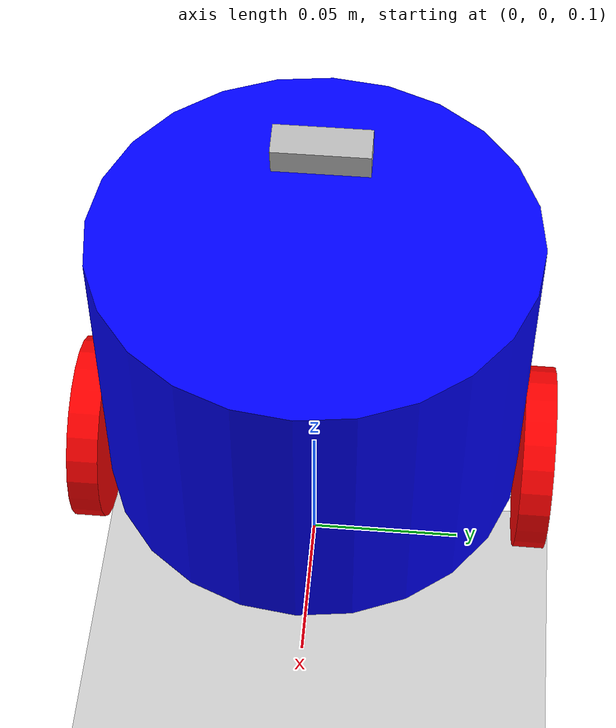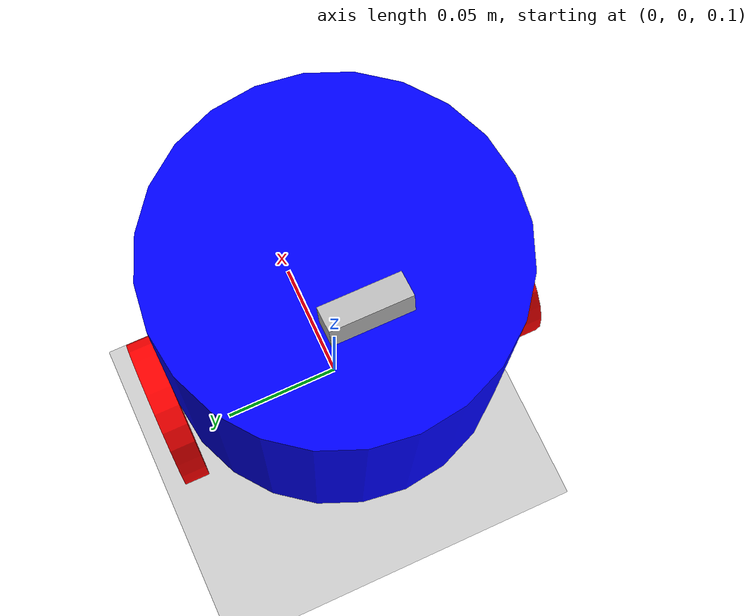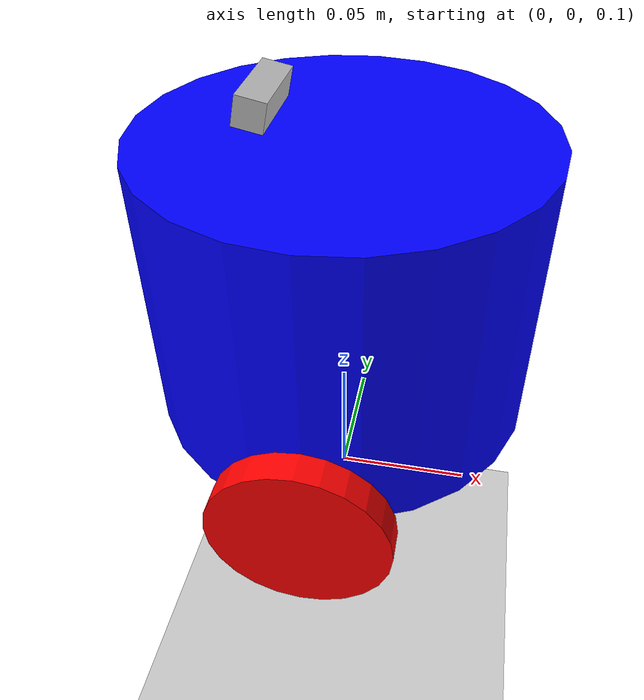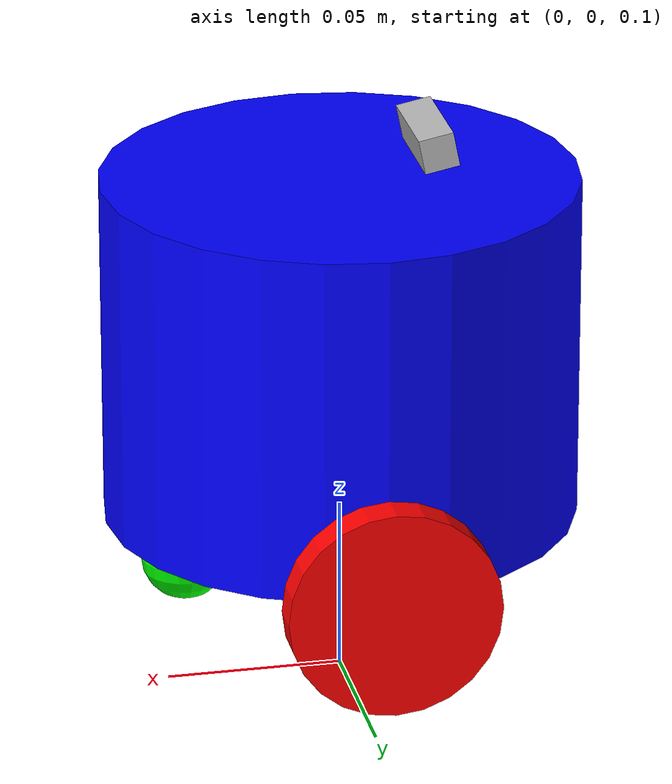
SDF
<sdf version="1.10">
 <world name="Mtracker_demo">
  <physics name="1ms" type="ignored">
   <max_step_size>0.001</max_step_size>
   <real_time_factor>1</real_time_factor>
   <real_time_update_rate>1000</real_time_update_rate>
  </physics>
  <plugin name="ignition::gazebo::systems::Sensors" filename="ignition-gazebo-sensors-system"/>
  <plugin name="gz::sim::systems::Physics" filename="gz-sim-physics-system"/>
  <plugin name="gz::sim::systems::UserCommands" filename="gz-sim-user-commands-system"/>
  <plugin name="gz::sim::systems::SceneBroadcaster" filename="gz-sim-scene-broadcaster-system"/>
  <gravity>0 0 -9.8000000000000007</gravity>
  <magnetic_field>5.5644999999999998e-06 2.2875799999999999e-05 -4.2388400000000002e-05</magnetic_field>
  <atmosphere type="adiabatic"/>
  <scene>
   <ambient>0.400000006 0.400000006 0.400000006 1</ambient>
   <background>0.699999988 0.699999988 0.699999988 1</background>
   <shadows>true</shadows>
  </scene>
  <model name="ground_plane">
   <static>true</static>
   <link name="link">
    <collision name="collision">
     <geometry><plane><normal>0 0 1</normal><size>1 1</size></plane></geometry>
    </collision>
    <visual name="visual">
     <geometry><plane><normal>0 0 1</normal><size>100 100</size></plane></geometry>
     <material>
      <ambient>0.800000012 0.800000012 0.800000012 1</ambient>
      <diffuse>0.800000012 0.800000012 0.800000012 1</diffuse>
      <specular>0.800000012 0.800000012 0.800000012 1</specular>
     </material>
    </visual>
    <inertial>
     <mass>1</mass>
     <inertia><ixx>1</ixx><ixy>0</ixy><ixz>0</ixz><iyy>1</iyy><iyz>0</iyz><izz>1</izz></inertia>
    </inertial>
   </link>
  </model>
  <model name="MTracker" canonical_link="chassis">
   <pose>0 0 0 0 0 3.14</pose>
   <link name="chassis">
    <pose>0 0 0.2 0 0 0</pose>
    <inertial>
     <mass>1.14395</mass>
     <inertia>
      <ixx>0.002256</ixx>
      <ixy>0</ixy>
      <ixz>0</ixz>
      <iyy>0.002256</iyy>
      <iyz>0</iyz>
      <izz>0.002606</izz>
     </inertia>
    </inertial>
    <visual name="visual">
     <geometry><cylinder><radius>0.0675</radius><length>0.1</length></cylinder></geometry>
     <material><ambient>0 0 1 1</ambient><diffuse>0 0 1 1</diffuse><specular>0 0 1 1</specular></material>
    </visual>
    <collision name="collision">
     <geometry><cylinder><radius>0.0675</radius><length>0.1</length></cylinder></geometry>
    </collision>
   </link>
   <link name="camera">
    <pose relative_to="chassis">0.025 0 0.06 0 -0.2 0</pose>
    <inertial>
     <mass>0.1</mass>
     <inertia><ixx>0.000166667</ixx><iyy>0.000166667</iyy><izz>0.000166667</izz></inertia>
    </inertial>
    <collision name="collision"><geometry><box><size>0.01 0.03 0.01</size></box></geometry></collision>
    <visual name="visual"><geometry><box><size>0.01 0.03 0.01</size></box></geometry></visual>
    <sensor name="rgbd_camera" type="rgbd_camera">
     <camera>
      <horizontal_fov>1.20428</horizontal_fov>
      <image><width>1280</width><height>720</height></image>
      <clip><near>0.1</near><far>100</far></clip>
     </camera>
     <always_on>1</always_on>
     <update_rate>30</update_rate>
     <visualize>true</visualize>
     <topic>kamera</topic>
    </sensor>
   </link>
   <link name="left_wheel">
    <pose relative_to="chassis">0 0.0725 -0.05 -1.5707 0 0</pose>
    <inertial>
     <mass>0.1</mass>
     <inertia>
      <ixx>0.000016</ixx>
      <ixy>0</ixy>
      <ixz>0</ixz>
      <iyy>0.000016</iyy>
      <iyz>0</iyz>
      <izz>0.000016</izz>
     </inertia>
    </inertial>
    <visual name="visual">
     <geometry><cylinder><radius>0.03</radius><length>0.01</length></cylinder></geometry>
     <material><ambient>1 0 0 1</ambient><diffuse>1 0 0 1</diffuse><specular>1 0 0 1</specular></material>
    </visual>
    <collision name="collision">
     <geometry><cylinder><radius>0.03</radius><length>0.01</length></cylinder></geometry>
    </collision>
   </link>
   <link name="right_wheel">
    <pose relative_to="chassis">0 -0.0725 -0.05 -1.5707 0 0</pose>
    <inertial>
     <mass>1</mass>
     <inertia>
      <ixx>0.000016</ixx>
      <ixy>0</ixy>
      <ixz>0</ixz>
      <iyy>0.000016</iyy>
      <iyz>0</iyz>
      <izz>0.000031</izz>
     </inertia>
    </inertial>
    <visual name="visual">
     <geometry><cylinder><radius>0.03</radius><length>0.01</length></cylinder></geometry>
     <material><ambient>1 0 0 1</ambient><diffuse>1 0 0 1</diffuse><specular>1 0 0 1</specular></material>
    </visual>
    <collision name="collision">
     <geometry><cylinder><radius>0.03</radius><length>0.01</length></cylinder></geometry>
    </collision>
   </link>
   <frame name="caster1_frame" attached_to="chassis"><pose>0.045 0 -0.062 0 0 0</pose></frame>
   <link name="caster1">
    <pose relative_to="caster1_frame"/>
    <inertial>
     <mass>0.05</mass>
     <inertia>
      <ixx>0.000003</ixx>
      <ixy>0</ixy>
      <ixz>0</ixz>
      <iyy>0.000003</iyy>
      <iyz>0</iyz>
      <izz>0.000003</izz>
     </inertia>
    </inertial>
    <visual name="visual">
     <geometry><sphere><radius>0.0125</radius></sphere></geometry>
     <material><ambient>0 1 0 1</ambient><diffuse>0 1 0 1</diffuse><specular>0 1 0 1</specular></material>
    </visual>
    <collision name="collision"><geometry><sphere><radius>0.0125</radius></sphere></geometry></collision>
   </link>
   <frame name="caster2_frame" attached_to="chassis"><pose>-0.045 0 -0.062 0 0 0</pose></frame>
   <link name="caster2">
    <pose relative_to="caster2_frame"/>
    <inertial>
     <mass>0.05</mass>
     <inertia>
      <ixx>0.000003</ixx>
      <ixy>0</ixy>
      <ixz>0</ixz>
      <iyy>0.000003</iyy>
      <iyz>0</iyz>
      <izz>0.000003</izz>
     </inertia>
    </inertial>
    <visual name="visual">
     <geometry><sphere><radius>0.0125</radius></sphere></geometry>
     <material><ambient>0 1 0 1</ambient><diffuse>0 1 0 1</diffuse><specular>0 1 0 1</specular></material>
    </visual>
    <collision name="collision"><geometry><sphere><radius>0.0125</radius></sphere></geometry></collision>
   </link>
   <joint name="left_wheel_joint" type="revolute">
    <pose>0 0 -1.1102230246251565e-16 0 0 0</pose>
    <parent>chassis</parent>
    <child>left_wheel</child>
    <axis>
     <xyz>0 9.6326794747692026e-05 0.99999999536057438</xyz>
     <limit>
      <lower>-1.7976900000000001e+308</lower>
      <upper>1.7976900000000001e+308</upper>
      <effort>inf</effort>
      <velocity>inf</velocity>
      <stiffness>100000000</stiffness>
      <dissipation>1</dissipation>
     </limit>
     <dynamics>
      <spring_reference>0</spring_reference>
      <spring_stiffness>0</spring_stiffness>
      <damping>0</damping>
      <friction>0</friction>
     </dynamics>
    </axis>
   </joint>
   <joint name="right_wheel_joint" type="revolute">
    <parent>chassis</parent>
    <child>right_wheel</child>
    <axis>
     <xyz>0 9.6326794747692026e-05 0.99999999536057438</xyz>
     <limit>
      <lower>-1.7976900000000001e+308</lower>
      <upper>1.7976900000000001e+308</upper>
      <effort>inf</effort>
      <velocity>inf</velocity>
      <stiffness>100000000</stiffness>
      <dissipation>1</dissipation>
     </limit>
     <dynamics>
      <spring_reference>0</spring_reference>
      <spring_stiffness>0</spring_stiffness>
      <damping>0</damping>
      <friction>0</friction>
     </dynamics>
    </axis>
   </joint>
   <joint name="camera_joint" type="fixed">
    <parent>chassis</parent>
    <child>camera</child>
    <axis>
     <xyz>0 0 2</xyz>
     <limit>
      <lower>-1.7976900000000001e+308</lower>
      <upper>1.7976900000000001e+308</upper>
      <effort>inf</effort>
      <velocity>inf</velocity>
      <stiffness>100000000</stiffness>
      <dissipation>1</dissipation>
     </limit>
     <dynamics>
      <spring_reference>0</spring_reference>
      <spring_stiffness>0</spring_stiffness>
      <damping>0</damping>
      <friction>0</friction>
     </dynamics>
    </axis>
   </joint>
   <joint name="caster1_wheel" type="ball"><parent>chassis</parent><child>caster1</child></joint>
   <joint name="caster2_wheel" type="ball"><parent>chassis</parent><child>caster2</child></joint>
   <plugin filename="ignition-gazebo-diff-drive-system" name="ignition::gazebo::systems::DiffDrive">
    <left_joint>left_wheel_joint</left_joint>
    <right_joint>right_wheel_joint</right_joint>
    <wheel_separation>2.4</wheel_separation>
    <wheel_radius>0.6</wheel_radius>
    <odom_publish_frequency>10</odom_publish_frequency>
    <max_linear_acceleration>1</max_linear_acceleration>
    <min_linear_acceleration>-1</min_linear_acceleration>
    <max_angular_acceleration>2</max_angular_acceleration>
    <min_angular_acceleration>-2</min_angular_acceleration>
    <max_linear_velocity>5</max_linear_velocity>
    <min_linear_velocity>-5</min_linear_velocity>
    <max_angular_velocity>5</max_angular_velocity>
    <min_angular_velocity>-5</min_angular_velocity>
   </plugin>
   <static>false</static>
  </model>
  <light name="sun" type="directional">
   <pose>-10 0 10 0 0 0</pose>
   <intensity>3</intensity>
   <direction>-0.5 0.10000000000000001 -0.90000000000000002</direction>
   <diffuse>0.800000012 0.800000012 0.800000012 1</diffuse>
   <specular>0.200000003 0.200000003 0.200000003 1</specular>
   <attenuation>
    <range>1000</range>
    <linear>0.01</linear>
    <constant>0.90000000000000002</constant>
    <quadratic>0.001</quadratic>
   </attenuation>
   <spot><inner_angle>0</inner_angle><outer_angle>0</outer_angle><falloff>0</falloff></spot>
  </light>
 </world>
</sdf>
